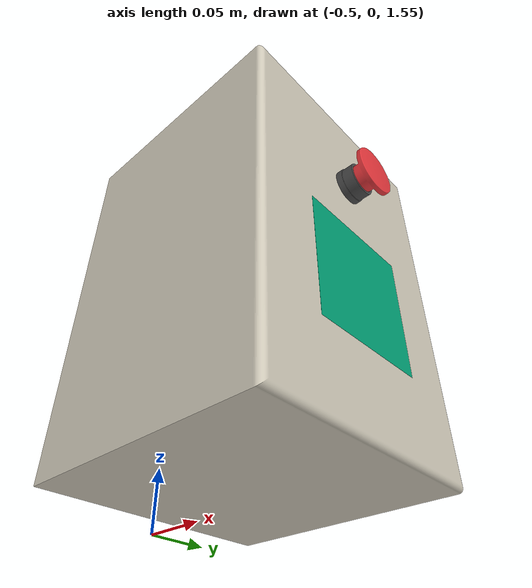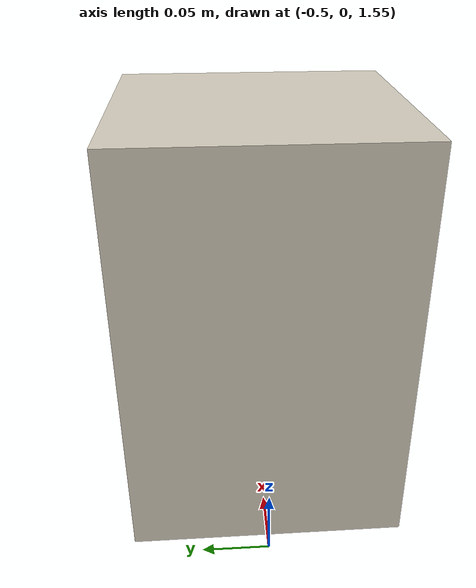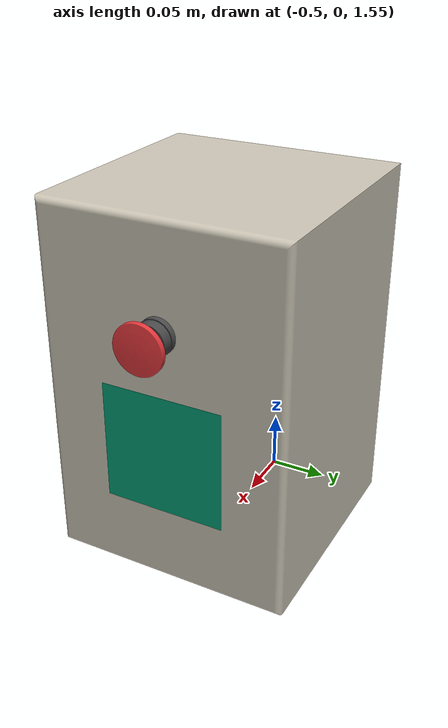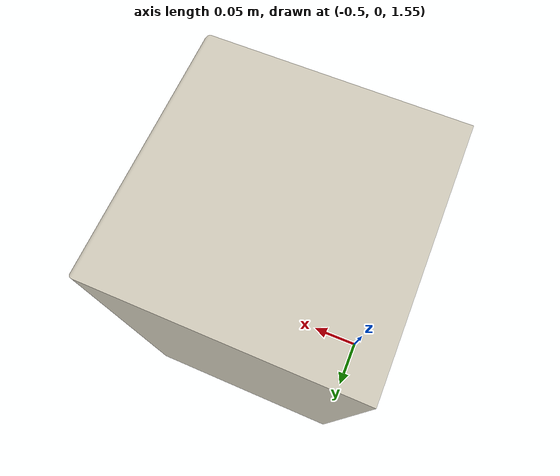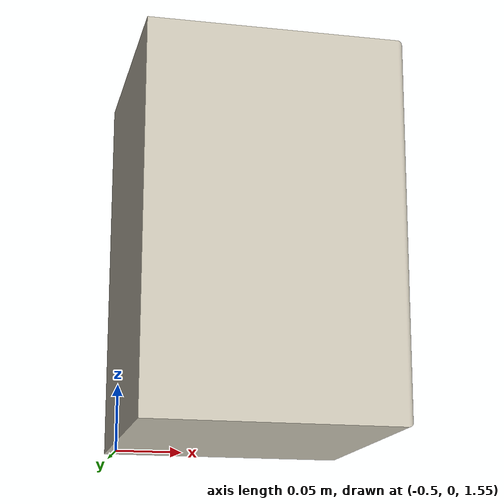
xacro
<?xml version="1.0" encoding="utf-8"?>
<robot xmlns:xacro="http://www.ros.org/wiki/xacro" name="timon">
  <link name ="box_link">
  </link>
  <xacro:include filename="$(find manipulator_description)/urdf/caixa_vertical.xacro"/>
  <xacro:include filename="$(find manipulator_description)/urdf/tag_vertical.xacro"/>
  <xacro:include filename="$(find manipulator_description)/urdf/botao_vertical.xacro"/>

  <joint name="base_to_box" type="fixed">
    <origin xyz="-0.4 0.0 1.56" rpy="0 0 1.571"/>
    <parent link="box_link"/>
    <child link="caixa"/>
  </joint>
</robot>

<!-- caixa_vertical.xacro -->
<robot name="caixa" xmlns:xacro="http://ros.org/wiki/xacro">

  <link name="caixa">
    <visual>
      <origin rpy="0 0 0" xyz="0 0 0"/>
      <geometry>
        <mesh filename="package://manipulator_description/meshes/caixa.dae"/>
      </geometry>
    </visual>
    <collision>
      <origin rpy="0 0 0" xyz="0 0 0"/>
      <geometry>
        <mesh filename="package://manipulator_description/meshes/caixa.stl"/>
      </geometry>
    </collision>
    <inertial>
      <origin rpy="0 0 0" xyz="0 0 0"/>
      <mass value="7.83641898"/>
      <inertia ixx="1.14439574e-1" ixy="0" ixz="-4.92675504e-9" iyx="0" iyy="1.11258168e-1" iyz="-1.02434023e-3" izx="-4.92675504e-9" izy="-1.02434023e-3" izz="8.62491763e-2"/>
    </inertial>
  </link>

</robot>

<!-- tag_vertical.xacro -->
<robot xmlns:xacro="http://www.ros.org/wiki/xacro" name="tag">
    <link name="tag_aruco_4">
        <inertial>
            <origin xyz="0 0 0" rpy="0 0 0 "/>
            <mass value="1.0"/>
            <inertia ixx="0.0741666666"  ixy="0.0"  ixz="0.0" iyy="0.0585461666" iyz="0.0" izz="0.02604166666" />
        </inertial>
        <collision>
            <origin xyz="0.0 0.0 0.0" rpy="0.0 0.0 0.0"/>
            <geometry>
                <box size="0.1 0.1 0.1"/>
            </geometry>
        </collision>
        <visual>
            <origin xyz="0.0 0.0 0.0" rpy="0 0 0"/>
            <geometry>
                <mesh filename="package://manipulator_description/meshes/tag.dae"/>
            </geometry>
        </visual>
    </link>

        <gazebo reference="tag_aruco_4">
            <kp>100000.0</kp>
            <kd>100000.0</kd>
            <mu1>0.1</mu1>
            <mu2>0.1</mu2>
            <fdir1>1 0 0</fdir1>
        </gazebo>

    <joint name="box_to_tag" type="fixed">
        <origin rpy="0 0 0" xyz="0.0 -0.1 -0.013"/>
        <parent link="botao"/>
        <child link = "tag_aruco_4"/>
    </joint>

</robot>

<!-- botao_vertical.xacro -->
<robot name="botao" xmlns:xacro="http://ros.org/wiki/xacro">

  <link name="botao">
    <visual>
      <origin rpy="0 0 0" xyz="0 0 0"/>
      <geometry>
        <mesh filename="package://manipulator_description/meshes/botao.dae"/>
      </geometry>
    </visual>
    <collision>
      <origin rpy="0 0 0" xyz="0 0 0"/>
      <geometry>
        <mesh filename="package://manipulator_description/meshes/botao.stl"/>
      </geometry>
    </collision>
    <inertial>
      <origin rpy="0 0 0" xyz="0 0 0"/>
      <mass value="0.00954509"/>
      <inertia ixx="8.08010910e-7" ixy="0" ixz="0" iyx="0" iyy="1.34192268e-6" iyz="0" izx="0" izy="0" izz="8.08010910e-7"/>
    </inertial>
  </link>
  <link name="fake_botao">
  </link>

 <joint name="caixa_to_botao" type="fixed">
    <parent link="caixa"/>
    <child link="botao"/>
    <origin rpy="1.571 0 0" xyz="0 -0.1165 0.215"/>
  </joint>
  <joint name ="botao_fake" type ="fixed">
    <parent link="botao"/>
    <child link="fake_botao"/>
    <origin rpy="0.0 0.0 0.0" xyz="0.0 0.0 0.1"/>
  </joint>

</robot>
